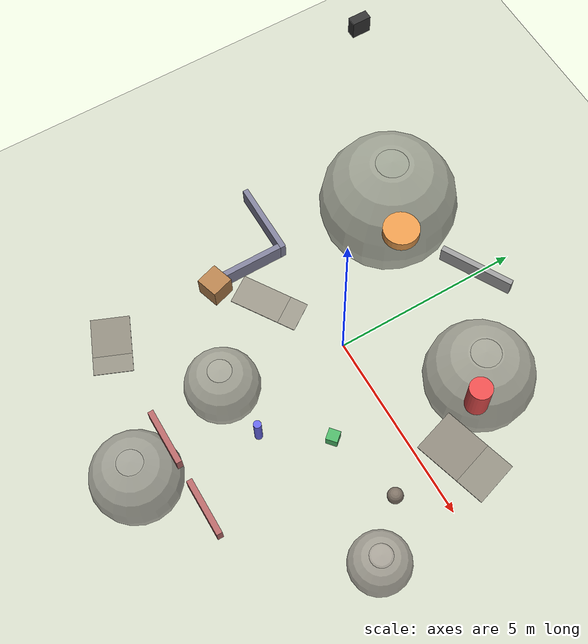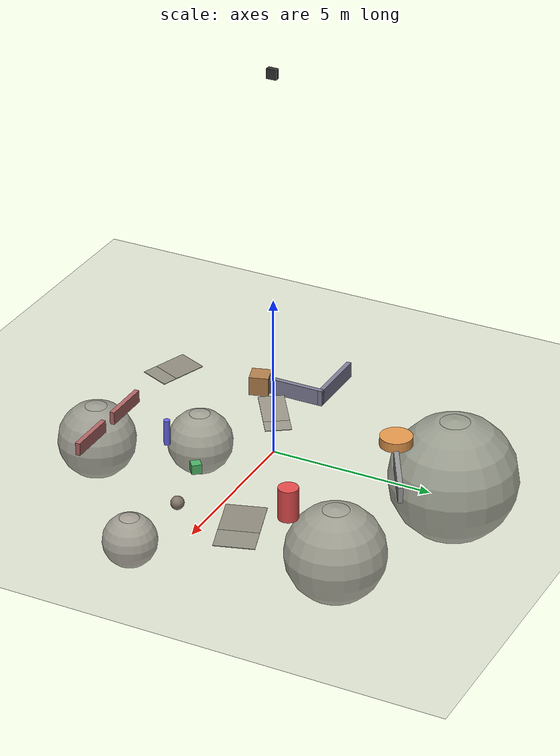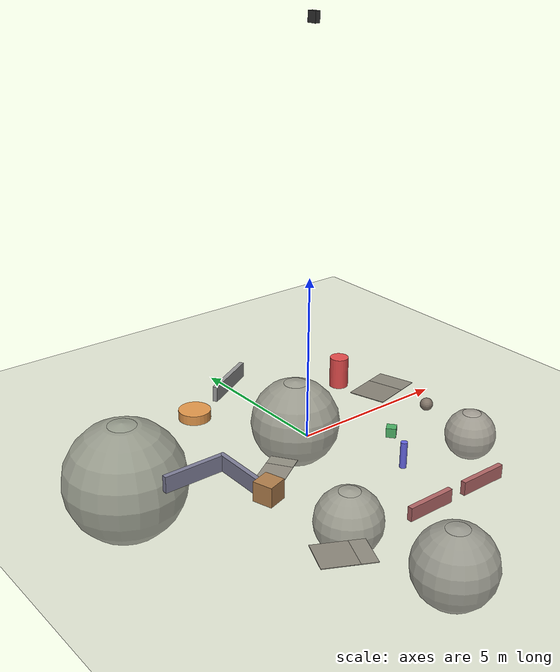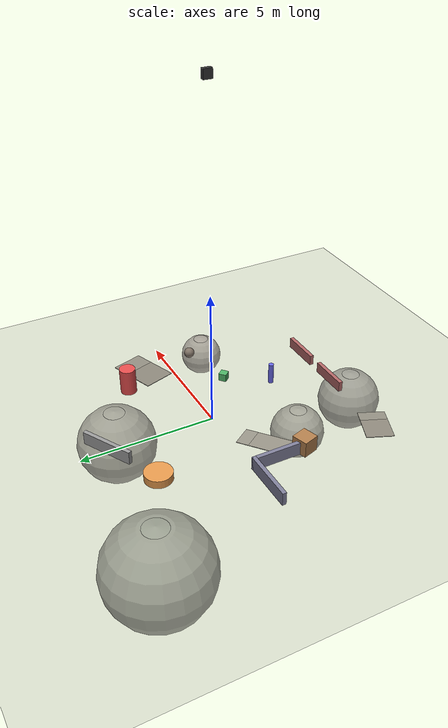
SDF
<?xml version="1.0" ?>
<sdf version="1.7">
  <world name="leo_obstacles">

    <physics name="default" type="ode">
      <max_step_size>0.004</max_step_size>
      <real_time_factor>1.0</real_time_factor>
    </physics>

    <plugin filename="gz-sim-physics-system" name="gz::sim::systems::Physics"/>
    <plugin filename="gz-sim-scene-broadcaster-system" name="gz::sim::systems::SceneBroadcaster"/>
    <plugin filename="gz-sim-user-commands-system" name="gz::sim::systems::UserCommands"/>
    <plugin filename="gz-sim-sensors-system" name="gz::sim::systems::Sensors">
      <render_engine>ogre2</render_engine>
    </plugin>
    <plugin filename="gz-sim-imu-system" name="gz::sim::systems::Imu"/>
    <plugin filename="gz-sim-contact-system" name="gz::sim::systems::Contact"/>

    <light type="directional" name="sun">
      <cast_shadows>true</cast_shadows>
      <pose>0 0 10 0 0 0</pose>
      <diffuse>0.9 0.9 0.9 1</diffuse>
      <specular>0.3 0.3 0.3 1</specular>
      <direction>-0.5 0.1 -0.9</direction>
    </light>

    <!-- ── Ground Plane ────────────────────────────────────────── -->
    <model name="ground_plane">
      <static>true</static>
      <link name="link">
        <collision name="collision">
          <geometry>
            <plane><normal>0 0 1</normal><size>50 50</size></plane>
          </geometry>
          <surface>
            <friction><ode><mu>1.0</mu><mu2>1.0</mu2></ode></friction>
          </surface>
        </collision>
        <visual name="visual">
          <geometry>
            <plane><normal>0 0 1</normal><size>50 50</size></plane>
          </geometry>
          <material>
            <ambient>0.55 0.55 0.5 1</ambient>
            <diffuse>0.65 0.65 0.6 1</diffuse>
          </material>
        </visual>
      </link>
    </model>

    <!-- Bump: radius 1.5m, buried at z=-1.46, so 4cm sticks up -->
    <model name="bump_wide_1">
      <static>true</static>
      <pose>2 3 -1.46 0 0 0</pose>
      <link name="link">
        <collision name="col">
          <geometry><sphere><radius>1.5</radius></sphere></geometry>
        </collision>
        <visual name="vis">
          <geometry><sphere><radius>1.5</radius></sphere></geometry>
          <material>
            <ambient>0.52 0.52 0.47 1</ambient>
            <diffuse>0.62 0.62 0.57 1</diffuse>
          </material>
        </visual>
      </link>
    </model>

    <!-- Bump: radius 1.0m, buried at z=-0.97, 3cm up -->
    <model name="bump_wide_2">
      <static>true</static>
      <pose>-1 -3 -0.97 0 0 0</pose>
      <link name="link">
        <collision name="col">
          <geometry><sphere><radius>1.0</radius></sphere></geometry>
        </collision>
        <visual name="vis">
          <geometry><sphere><radius>1.0</radius></sphere></geometry>
          <material>
            <ambient>0.53 0.53 0.48 1</ambient>
            <diffuse>0.63 0.63 0.58 1</diffuse>
          </material>
        </visual>
      </link>
    </model>

    <!-- Bump: radius 2.0m, buried at z=-1.95, 5cm up -->
    <model name="bump_wide_3">
      <static>true</static>
      <pose>-4 4 -1.95 0 0 0</pose>
      <link name="link">
        <collision name="col">
          <geometry><sphere><radius>2.0</radius></sphere></geometry>
        </collision>
        <visual name="vis">
          <geometry><sphere><radius>2.0</radius></sphere></geometry>
          <material>
            <ambient>0.50 0.52 0.46 1</ambient>
            <diffuse>0.60 0.62 0.56 1</diffuse>
          </material>
        </visual>
      </link>
    </model>

    <!-- Bump: radius 0.8m, buried at z=-0.76, 4cm up -->
    <model name="bump_small_1">
      <static>true</static>
      <pose>5 -2 -0.76 0 0 0</pose>
      <link name="link">
        <collision name="col">
          <geometry><sphere><radius>0.8</radius></sphere></geometry>
        </collision>
        <visual name="vis">
          <geometry><sphere><radius>0.8</radius></sphere></geometry>
          <material>
            <ambient>0.54 0.52 0.48 1</ambient>
            <diffuse>0.64 0.62 0.58 1</diffuse>
          </material>
        </visual>
      </link>
    </model>

    <!-- Bump: radius 1.2m, buried at z=-1.17, 3cm up -->
    <model name="bump_small_2">
      <static>true</static>
      <pose>0 -6 -1.17 0 0 0</pose>
      <link name="link">
        <collision name="col">
          <geometry><sphere><radius>1.2</radius></sphere></geometry>
        </collision>
        <visual name="vis">
          <geometry><sphere><radius>1.2</radius></sphere></geometry>
          <material>
            <ambient>0.51 0.51 0.47 1</ambient>
            <diffuse>0.61 0.61 0.57 1</diffuse>
          </material>
        </visual>
      </link>
    </model>

    <!-- ── Dips — thin ramps angled slightly below ground ─────── -->

    <!-- Gentle downslope patch -->
    <model name="dip_1">
      <static>true</static>
      <pose>4 1 -0.02 0 0.06 0.3</pose>
      <link name="link">
        <collision name="col">
          <geometry><box><size>2.0 1.2 0.02</size></box></geometry>
        </collision>
        <visual name="vis">
          <geometry><box><size>2.0 1.2 0.02</size></box></geometry>
          <material>
            <ambient>0.45 0.43 0.38 1</ambient>
            <diffuse>0.55 0.53 0.48 1</diffuse>
          </material>
        </visual>
      </link>
    </model>

    <!-- Another gentle dip -->
    <model name="dip_2">
      <static>true</static>
      <pose>-3 -5 -0.02 0 0.05 -0.4</pose>
      <link name="link">
        <collision name="col">
          <geometry><box><size>1.5 1.0 0.02</size></box></geometry>
        </collision>
        <visual name="vis">
          <geometry><box><size>1.5 1.0 0.02</size></box></geometry>
          <material>
            <ambient>0.46 0.44 0.39 1</ambient>
            <diffuse>0.56 0.54 0.49 1</diffuse>
          </material>
        </visual>
      </link>
    </model>

    <!-- Slight ramp -->
    <model name="ramp_1">
      <static>true</static>
      <pose>-2 -1 0.0 0 0.08 0.6</pose>
      <link name="link">
        <collision name="col">
          <geometry><box><size>1.8 0.8 0.02</size></box></geometry>
        </collision>
        <visual name="vis">
          <geometry><box><size>1.8 0.8 0.02</size></box></geometry>
          <material>
            <ambient>0.50 0.48 0.43 1</ambient>
            <diffuse>0.60 0.58 0.53 1</diffuse>
          </material>
        </visual>
      </link>
    </model>

    <!-- ══════════════════════════════════════════════════════════
         OBSTACLES — Shapes to navigate around
         ══════════════════════════════════════════════════════════ -->

    <!-- Tall red cylinder -->
    <model name="cylinder_tall">
      <static>true</static>
      <pose>3 2 0.5 0 0 0</pose>
      <link name="link">
        <collision name="col">
          <geometry><cylinder><radius>0.3</radius><length>1.0</length></cylinder></geometry>
        </collision>
        <visual name="vis">
          <geometry><cylinder><radius>0.3</radius><length>1.0</length></cylinder></geometry>
          <material>
            <ambient>0.8 0.2 0.2 1</ambient>
            <diffuse>0.9 0.3 0.3 1</diffuse>
          </material>
        </visual>
      </link>
    </model>

    <!-- Short orange cylinder -->
    <model name="cylinder_short">
      <static>true</static>
      <pose>-2 3 0.15 0 0 0</pose>
      <link name="link">
        <collision name="col">
          <geometry><cylinder><radius>0.5</radius><length>0.3</length></cylinder></geometry>
        </collision>
        <visual name="vis">
          <geometry><cylinder><radius>0.5</radius><length>0.3</length></cylinder></geometry>
          <material>
            <ambient>0.8 0.5 0.2 1</ambient>
            <diffuse>0.9 0.6 0.3 1</diffuse>
          </material>
        </visual>
      </link>
    </model>

    <!-- Blue pole -->
    <model name="cylinder_pole">
      <static>true</static>
      <pose>1 -3 0.4 0 0 0</pose>
      <link name="link">
        <collision name="col">
          <geometry><cylinder><radius>0.1</radius><length>0.8</length></cylinder></geometry>
        </collision>
        <visual name="vis">
          <geometry><cylinder><radius>0.1</radius><length>0.8</length></cylinder></geometry>
          <material>
            <ambient>0.3 0.3 0.8 1</ambient>
            <diffuse>0.4 0.4 0.9 1</diffuse>
          </material>
        </visual>
      </link>
    </model>

    <!-- Large brown crate -->
    <model name="box_large">
      <static>true</static>
      <pose>-3 -2 0.3 0 0 0.3</pose>
      <link name="link">
        <collision name="col">
          <geometry><box><size>0.6 0.6 0.6</size></box></geometry>
        </collision>
        <visual name="vis">
          <geometry><box><size>0.6 0.6 0.6</size></box></geometry>
          <material>
            <ambient>0.6 0.4 0.2 1</ambient>
            <diffuse>0.7 0.5 0.3 1</diffuse>
          </material>
        </visual>
      </link>
    </model>

    <!-- Small green cube -->
    <model name="box_small">
      <static>true</static>
      <pose>2 -1.5 0.15 0 0 0.7</pose>
      <link name="link">
        <collision name="col">
          <geometry><box><size>0.3 0.3 0.3</size></box></geometry>
        </collision>
        <visual name="vis">
          <geometry><box><size>0.3 0.3 0.3</size></box></geometry>
          <material>
            <ambient>0.2 0.6 0.3 1</ambient>
            <diffuse>0.3 0.7 0.4 1</diffuse>
          </material>
        </visual>
      </link>
    </model>

    <!-- Angled wall -->
    <model name="wall_1">
      <static>true</static>
      <pose>0 4 0.25 0 0 0.5</pose>
      <link name="link">
        <collision name="col">
          <geometry><box><size>2.0 0.15 0.5</size></box></geometry>
        </collision>
        <visual name="vis">
          <geometry><box><size>2.0 0.15 0.5</size></box></geometry>
          <material>
            <ambient>0.5 0.5 0.5 1</ambient>
            <diffuse>0.6 0.6 0.6 1</diffuse>
          </material>
        </visual>
      </link>
    </model>

    <!-- L-wall part A -->
    <model name="wall_L_a">
      <static>true</static>
      <pose>-4 0 0.25 0 0 0</pose>
      <link name="link">
        <collision name="col">
          <geometry><box><size>2.0 0.15 0.5</size></box></geometry>
        </collision>
        <visual name="vis">
          <geometry><box><size>2.0 0.15 0.5</size></box></geometry>
          <material>
            <ambient>0.4 0.4 0.5 1</ambient>
            <diffuse>0.5 0.5 0.6 1</diffuse>
          </material>
        </visual>
      </link>
    </model>

    <!-- L-wall part B -->
    <model name="wall_L_b">
      <static>true</static>
      <pose>-3.075 -0.925 0.25 0 0 1.5708</pose>
      <link name="link">
        <collision name="col">
          <geometry><box><size>2.0 0.15 0.5</size></box></geometry>
        </collision>
        <visual name="vis">
          <geometry><box><size>2.0 0.15 0.5</size></box></geometry>
          <material>
            <ambient>0.4 0.4 0.5 1</ambient>
            <diffuse>0.5 0.5 0.6 1</diffuse>
          </material>
        </visual>
      </link>
    </model>

    <!-- Narrow passage -->
    <model name="passage_left">
      <static>true</static>
      <pose>0 -5 0.2 0 0 0</pose>
      <link name="link">
        <collision name="col">
          <geometry><box><size>1.5 0.15 0.4</size></box></geometry>
        </collision>
        <visual name="vis">
          <geometry><box><size>1.5 0.15 0.4</size></box></geometry>
          <material>
            <ambient>0.6 0.3 0.3 1</ambient>
            <diffuse>0.7 0.4 0.4 1</diffuse>
          </material>
        </visual>
      </link>
    </model>

    <model name="passage_right">
      <static>true</static>
      <pose>2.0 -5 0.2 0 0 0</pose>
      <link name="link">
        <collision name="col">
          <geometry><box><size>1.5 0.15 0.4</size></box></geometry>
        </collision>
        <visual name="vis">
          <geometry><box><size>1.5 0.15 0.4</size></box></geometry>
          <material>
            <ambient>0.6 0.3 0.3 1</ambient>
            <diffuse>0.7 0.4 0.4 1</diffuse>
          </material>
        </visual>
      </link>
    </model>

    <!-- Boulder -->
    <model name="boulder_1">
      <static>true</static>
      <pose>4 -1 0.2 0 0 0</pose>
      <link name="link">
        <collision name="col">
          <geometry><sphere><radius>0.2</radius></sphere></geometry>
        </collision>
        <visual name="vis">
          <geometry><sphere><radius>0.2</radius></sphere></geometry>
          <material>
            <ambient>0.4 0.35 0.3 1</ambient>
            <diffuse>0.5 0.45 0.4 1</diffuse>
          </material>
        </visual>
      </link>
    </model>

      <model name="overhead_lidar">
      <static>true</static>
      <pose>0 0 12 0 1.5708 0</pose>
      <link name="link">
        <visual name="body">
          <geometry><box><size>0.3 0.3 0.15</size></box></geometry>
          <material>
            <ambient>0.1 0.1 0.1 1</ambient>
            <diffuse>0.2 0.2 0.2 1</diffuse>
          </material>
        </visual>
        <sensor name="overhead_lidar_sensor" type="gpu_lidar">
          <pose>0 0 0 0 0 0</pose>
          <topic>overhead_lidar</topic>
          <update_rate>5</update_rate>
          <always_on>true</always_on>
          <visualize>true</visualize>
          <ray>
            <scan>
              <horizontal>
                <samples>360</samples>
                <resolution>1</resolution>
                <min_angle>-3.14159</min_angle>
                <max_angle>3.14159</max_angle>
              </horizontal>
              <vertical>
                <samples>16</samples>
                <resolution>1</resolution>
                <min_angle>-0.26</min_angle>
                <max_angle>0.26</max_angle>
              </vertical>
            </scan>
            <range>
              <min>0.3</min>
              <max>25.0</max>
              <resolution>0.01</resolution>
            </range>
          </ray>
        </sensor>
      </link>
    </model>
  </world>
</sdf>
